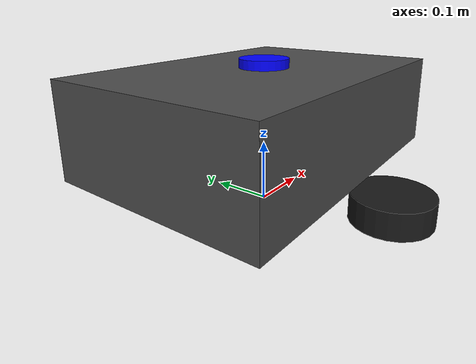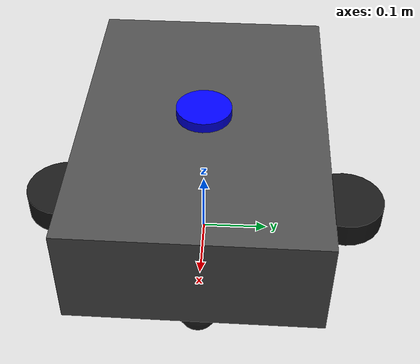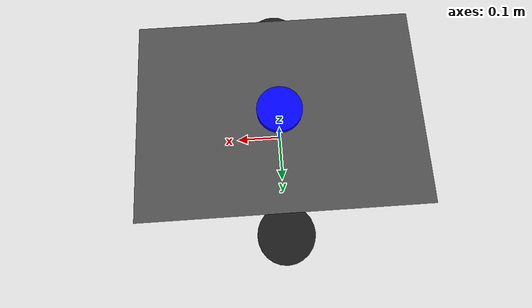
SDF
<?xml version="1.0"?>
<sdf version="1.7">
  <model name="mbot">

    <!-- Base chassis -->
    <link name="chassis">
      <pose>0 0 0.15 0 0 0</pose>
      <inertial>
        <mass>5.0</mass>
        <inertia>
          <ixx>0.13</ixx>
          <iyy>0.21</iyy>
          <izz>0.21</izz>
        </inertia>
      </inertial>
      <collision name="chassis_collision">
        <geometry>
          <box>
            <size>0.5 0.35 0.15</size>
          </box>
        </geometry>
      </collision>
      <visual name="chassis_visual">
        <geometry>
          <box>
            <size>0.5 0.35 0.15</size>
          </box>
        </geometry>
        <material>
          <ambient>0.2 0.2 0.2 1</ambient>
          <diffuse>0.3 0.3 0.3 1</diffuse>
        </material>
      </visual>
    </link>

    <!-- Left wheel -->
    <link name="left_wheel">
      <pose>0 0.22 0.05 0 0 0</pose>
      <inertial>
        <mass>0.2</mass>
        <inertia>
          <ixx>0.0005</ixx>
          <iyy>0.0005</iyy>
          <izz>0.0005</izz>
        </inertia>
      </inertial>
      <collision name="left_wheel_collision">
        <geometry>
          <cylinder>
            <radius>0.06</radius>
            <length>0.04</length>
          </cylinder>
        </geometry>
      </collision>
      <visual name="left_wheel_visual">
        <geometry>
          <cylinder>
            <radius>0.06</radius>
            <length>0.04</length>
          </cylinder>
        </geometry>
        <material>
          <ambient>0.1 0.1 0.1 1</ambient>
          <diffuse>0.1 0.1 0.1 1</diffuse>
        </material>
      </visual>
    </link>

    <joint name="left_wheel_joint" type="revolute">
      <parent>chassis</parent>
      <child>left_wheel</child>
      <axis>
        <xyz>0 1 0</xyz>
      </axis>
      <limit>
        <lower>-1e+16</lower>
        <upper>1e+16</upper>
      </limit>
    </joint>

    <!-- Right wheel -->
    <link name="right_wheel">
      <pose>0 -0.22 0.05 0 0 0</pose>
      <inertial>
        <mass>0.2</mass>
        <inertia>
          <ixx>0.0005</ixx>
          <iyy>0.0005</iyy>
          <izz>0.0005</izz>
        </inertia>
      </inertial>
      <collision name="right_wheel_collision">
        <geometry>
          <cylinder>
            <radius>0.06</radius>
            <length>0.04</length>
          </cylinder>
        </geometry>
      </collision>
      <visual name="right_wheel_visual">
        <geometry>
          <cylinder>
            <radius>0.06</radius>
            <length>0.04</length>
          </cylinder>
        </geometry>
        <material>
          <ambient>0.1 0.1 0.1 1</ambient>
          <diffuse>0.1 0.1 0.1 1</diffuse>
        </material>
      </visual>
    </link>

    <joint name="right_wheel_joint" type="revolute">
      <parent>chassis</parent>
      <child>right_wheel</child>
      <axis>
        <xyz>0 1 0</xyz>
      </axis>
      <limit>
        <lower>-1e+16</lower>
        <upper>1e+16</upper>
      </limit>
    </joint>

    <!-- Caster wheel for balance -->
    <link name="caster_wheel">
      <pose>0.15 0 -0.03 0 0 0</pose>
      <inertial>
        <mass>0.05</mass>
        <inertia>
          <ixx>0.0001</ixx>
          <iyy>0.0001</iyy>
          <izz>0.0001</izz>
        </inertia>
      </inertial>
      <collision name="caster_collision">
        <geometry>
          <sphere>
            <radius>0.03</radius>
          </sphere>
        </geometry>
      </collision>
      <visual name="caster_visual">
        <geometry>
          <sphere>
            <radius>0.03</radius>
          </sphere>
        </geometry>
        <material>
          <ambient>0.1 0.1 0.1 1</ambient>
          <diffuse>0.1 0.1 0.1 1</diffuse>
        </material>
      </visual>
    </link>

    <joint name="caster_joint" type="ball">
      <parent>chassis</parent>
      <child>caster_wheel</child>
    </joint>

    <!-- Lidar sensor link -->
    <link name="lidar_link">
      <pose>0 0 0.22 0 0 0</pose>
      <inertial>
        <mass>0.01</mass>
        <inertia>
          <ixx>1e-6</ixx>
          <iyy>1e-6</iyy>
          <izz>1e-6</izz>
        </inertia>
      </inertial>
      <visual name="lidar_visual">
        <geometry>
          <cylinder>
            <radius>0.04</radius>
            <length>0.04</length>
          </cylinder>
        </geometry>
        <material>
          <ambient>0 0 1 1</ambient>
          <diffuse>0 0 1 1</diffuse>
        </material>
      </visual>
      <sensor name="lidar_sensor" type="ray">
        <pose>0 0 0.02 0 0 0</pose>
        <ray>
          <scan>
            <horizontal>
              <samples>360</samples>
              <resolution>1</resolution>
              <min_angle>-1.570796</min_angle>
              <max_angle>1.570796</max_angle>
            </horizontal>
          </scan>
          <range>
            <min>0.12</min>
            <max>10.0</max>
            <resolution>0.01</resolution>
          </range>
        </ray>
        <plugin name="lidar_plugin" filename="libgazebo_ros_ray_sensor.so">
          <ros>
            <namespace>/mbot</namespace>
          </ros>
          <update_rate>10</update_rate>
          <output_type>sensor_msgs/LaserScan</output_type>
          <frame_name>lidar_link</frame_name>
          <topic_name>/scan</topic_name>
        </plugin>
      </sensor>
    </link>

    <joint name="lidar_joint" type="fixed">
      <parent>chassis</parent>
      <child>lidar_link</child>
    </joint>

    <!-- Camera sensor link -->
    <link name="camera_link">
      <pose>0.2 0 0.15 0 0.2 0</pose>
      <inertial>
        <mass>0.01</mass>
        <inertia>
          <ixx>1e-6</ixx>
          <iyy>1e-6</iyy>
          <izz>1e-6</izz>
        </inertia>
      </inertial>
      <visual name="camera_visual">
        <geometry>
          <box>
            <size>0.04 0.02 0.02</size>
          </box>
        </geometry>
        <material>
          <ambient>1 1 1 1</ambient>
          <diffuse>1 1 1 1</diffuse>
        </material>
      </visual>
      <sensor name="camera_sensor" type="camera">
        <camera>
          <horizontal_fov>1.047</horizontal_fov>
          <image>
            <width>640</width>
            <height>480</height>
            <format>R8G8B8</format>
          </image>
          <clip>
            <near>0.1</near>
            <far>100</far>
          </clip>
        </camera>
        <plugin name="camera_plugin" filename="libgazebo_ros_camera.so">
          <ros>
            <namespace>/mbot</namespace>
          </ros>
          <update_rate>30</update_rate>
          <frame_name>camera_link</frame_name>
          <topic_name>/image_raw</topic_name>
        </plugin>
      </sensor>
    </link>

    <joint name="camera_joint" type="fixed">
      <parent>chassis</parent>
      <child>camera_link</child>
    </joint>

    <!-- Differential drive plugin -->
    <plugin name="diff_drive" filename="libgazebo_ros_diff_drive.so">
      <ros>
        <namespace>/mbot</namespace>
      </ros>
      <update_rate>50</update_rate>
      <left_joint>left_wheel_joint</left_joint>
      <right_joint>right_wheel_joint</right_joint>
      <wheel_separation>0.44</wheel_separation>
      <wheel_diameter>0.12</wheel_diameter>
      <max_wheel_torque>20</max_wheel_torque>
      <max_wheel_acceleration>1.0</max_wheel_acceleration>
      <odometry_frame>odom</odometry_frame>
      <robot_base_frame>chassis</robot_base_frame>
      <publish_odom>true</publish_odom>
      <publish_odom_tf>true</publish_odom_tf>
      <publish_wheel_tf>true</publish_wheel_tf>
      <odometry_topic>/odom</odometry_topic>
      <command_topic>/cmd_vel</command_topic>
    </plugin>

  </model>
</sdf>
